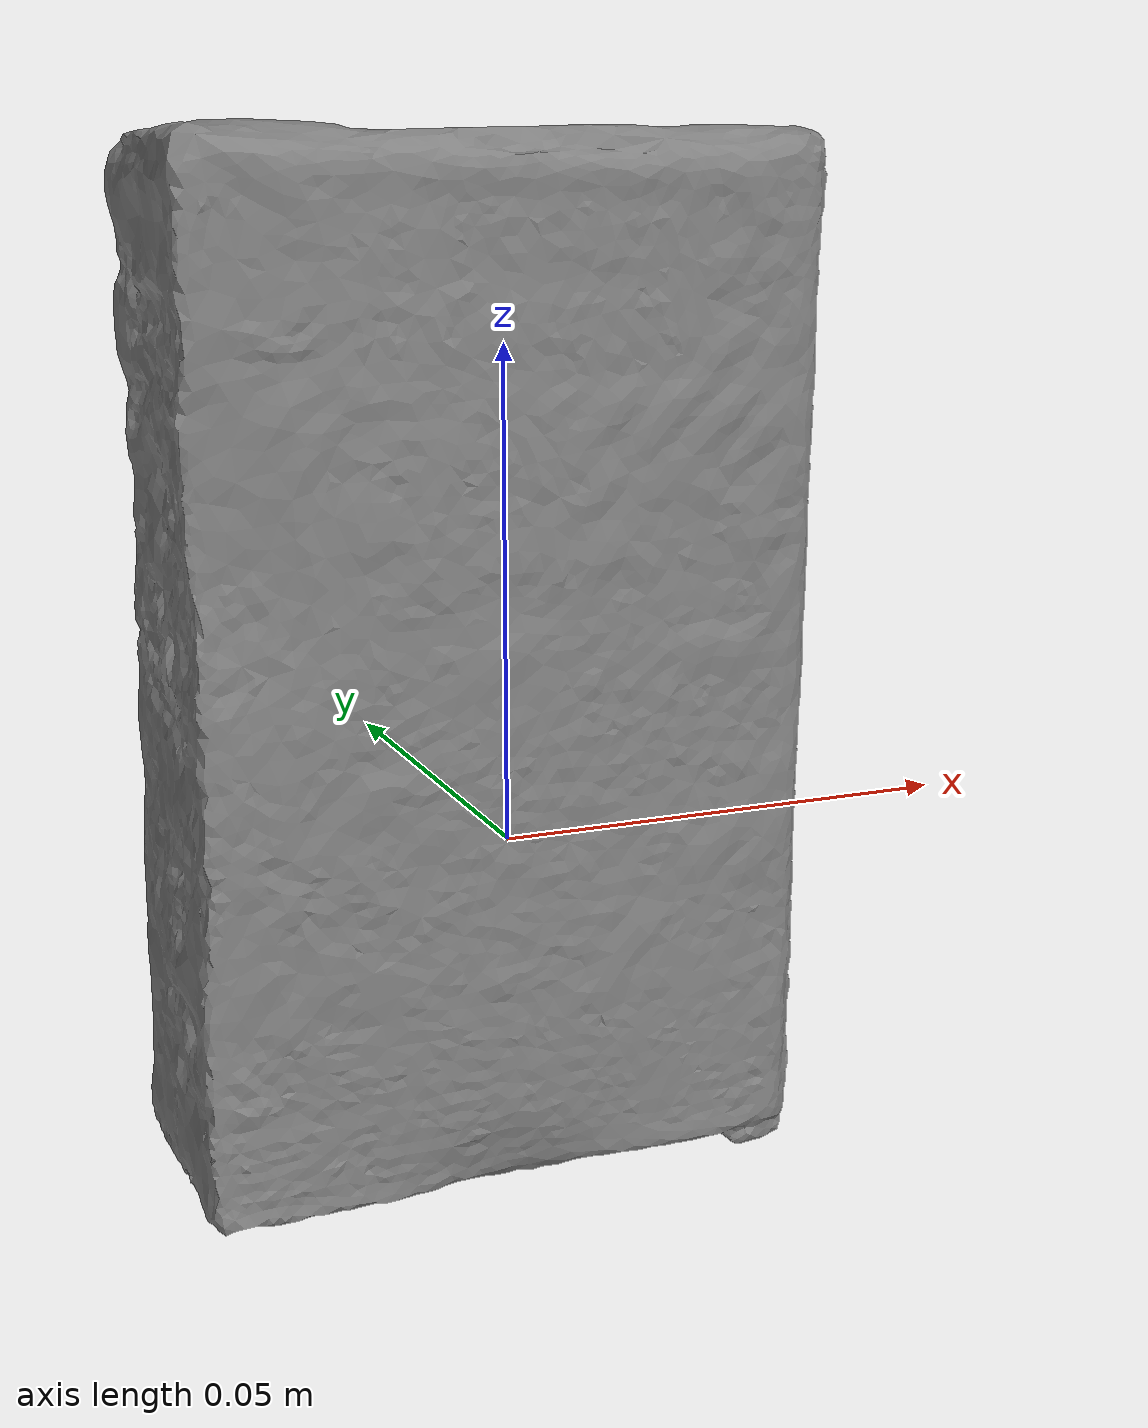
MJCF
<mujoco model="box_pink_M">
  <default>
    <default class="visual">
      <geom group="2" type="mesh" contype="0" conaffinity="0" />
    </default>
    <default class="collision">
      <geom group="3" type="mesh" />
    </default>
  </default>
  <asset>
    <mesh file="box_pink_M.stl" />
    <mesh file="box_pink_M_collision_0.stl" />
    <mesh file="box_pink_M_collision_1.stl" />
    <mesh file="box_pink_M_collision_2.stl" />
    <mesh file="box_pink_M_collision_3.stl" />
  </asset>
    <worldbody>
    <body name="box_pink_M">
      <geom mesh="box_pink_M" class="visual" />
      <geom mesh="box_pink_M_collision_0" class="collision" />
      <geom mesh="box_pink_M_collision_1" class="collision" />
      <geom mesh="box_pink_M_collision_2" class="collision" />
      <geom mesh="box_pink_M_collision_3" class="collision" />
    </body>
  </worldbody>
</mujoco>
